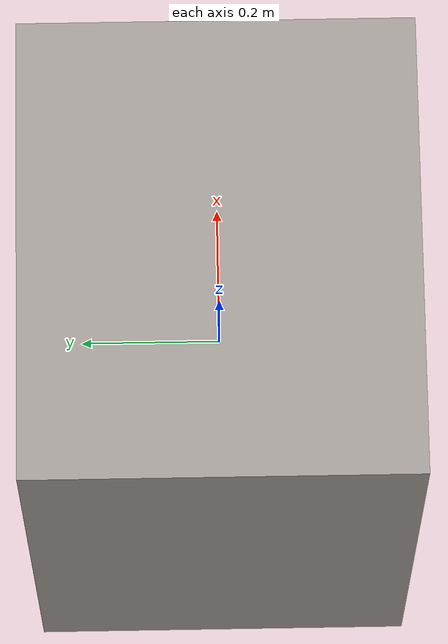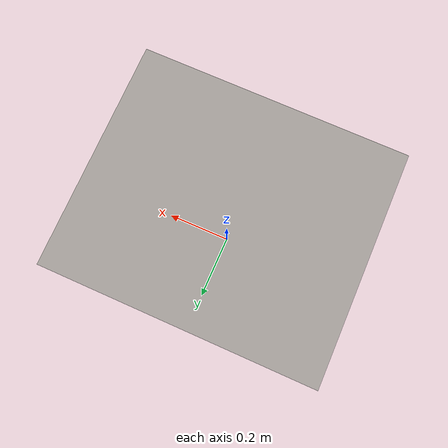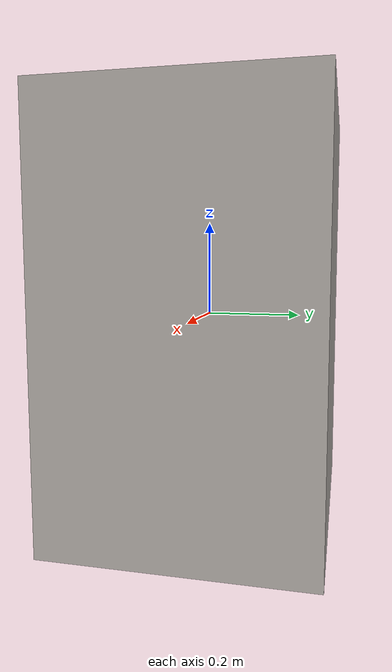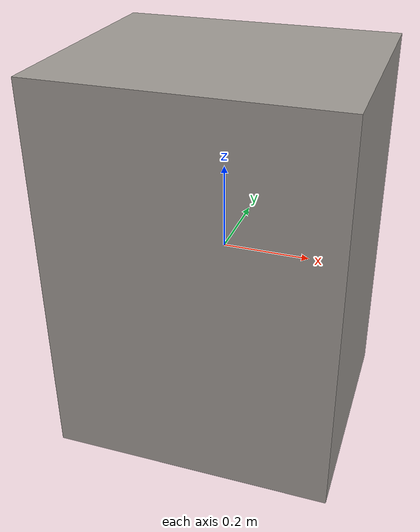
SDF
<?xml version="1.0"?>
<sdf version="1.6">
  <model name="KitchenSink">
    <static>true</static>
    <link name="link">
      <collision name="col">
        <geometry>
          <box>
            <size>0.65 0.55 0.9</size>
          </box>
        </geometry>
      </collision>
      <visual name="vis">
        <geometry>
          <box>
            <size>0.65 0.55 0.9</size>
          </box>
        </geometry>
        <material>
          <ambient>0.62 0.6 0.58 1</ambient>
          <diffuse>0.62 0.6 0.58 1</diffuse>
        </material>
      </visual>
    </link>
  </model>
</sdf>
